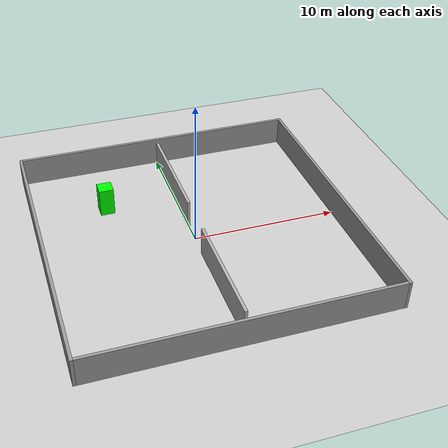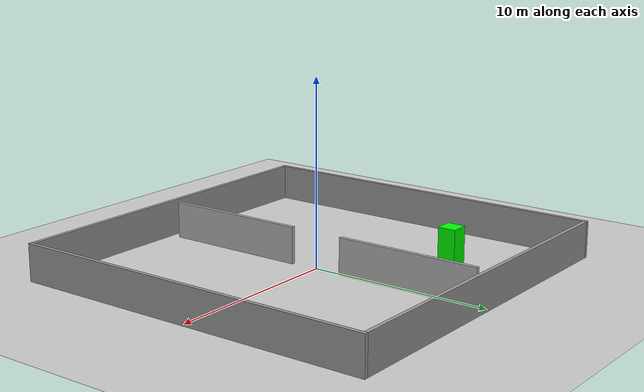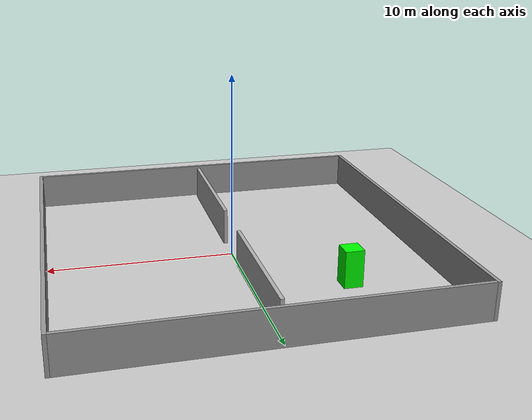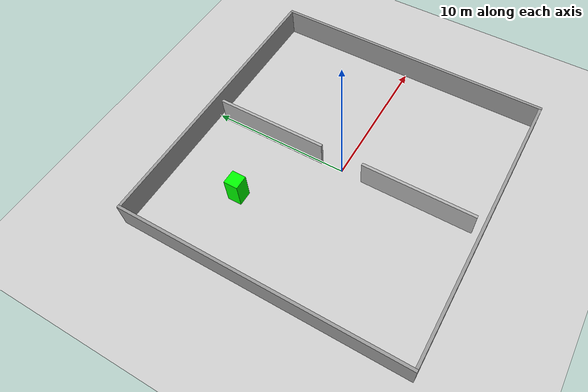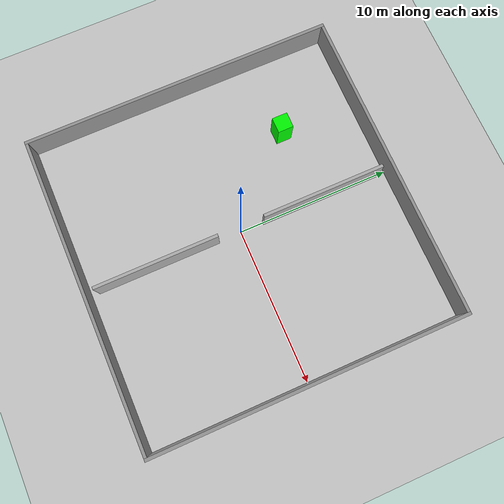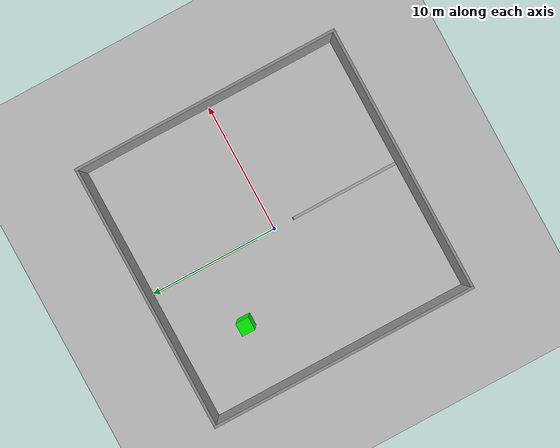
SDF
<?xml version="1.0"?>
<sdf version="1.6">
<world name="simple_narrow_channel">

  <!-- 基础环境 -->
  <include>
    <uri>model://ground_plane</uri>
  </include>
  <include>
    <uri>model://sun</uri>
  </include>

  <!-- 原有两面平行墙 -->
  <model name="wall_1" static="true">
    <pose>0 5.5 1 0 0 0</pose>
    <link name="link">
    <inertial>
        <mass>10000</mass> <!-- 设置极大质量（单位：kg） -->
        <inertia>
            <ixx>10000</ixx> <ixy>0</ixy> <ixz>0</ixz>
            <iyy>10000</iyy> <iyz>0</iyz>
            <izz>10000</izz>
        </inertia>
    </inertial>
      <collision name="collision">
        <geometry>
          <box>
            <size>0.2 8 2</size>
          </box>
        </geometry>
      </collision>
      <visual name="visual">
        <geometry>
          <box>
            <size>0.2 8 2</size>
          </box>
        </geometry>
        <material>
          <ambient>0.6 0.6 0.6 1</ambient>
          <diffuse>0.7 0.7 0.7 1</diffuse>
        </material>
      </visual>
    </link>
  </model>

  <model name="wall_2" static="true">
    <pose>0 -5.5 1 0 0 0</pose>
    <link name="link">
    <inertial>
        <mass>10000</mass> <!-- 设置极大质量（单位：kg） -->
        <inertia>
            <ixx>10000</ixx> <ixy>0</ixy> <ixz>0</ixz>
            <iyy>10000</iyy> <iyz>0</iyz>
            <izz>10000</izz>
        </inertia>
    </inertial>
      <collision name="collision">
        <geometry>
          <box>
            <size>0.2 8 2</size>
          </box>
        </geometry>
      </collision>
      <visual name="visual">
        <geometry>
          <box>
            <size>0.2 8 2</size>
          </box>
        </geometry>
        <material>
          <ambient>0.6 0.6 0.6 1</ambient>
          <diffuse>0.7 0.7 0.7 1</diffuse>
        </material>
      </visual>
    </link>
  </model>

  <!-- 新增外围墙壁 (20m×20m边界) -->
  <!-- 北墙 -->
  <model name="north_wall" static="true">
    <pose>0 10.1 1 0 0 0</pose>
    <link name="link">
    <inertial>
        <mass>10000</mass> <!-- 设置极大质量（单位：kg） -->
        <inertia>
            <ixx>10000</ixx> <ixy>0</ixy> <ixz>0</ixz>
            <iyy>10000</iyy> <iyz>0</iyz>
            <izz>10000</izz>
        </inertia>
    </inertial>
      <collision name="collision">
        <geometry>
          <box>
            <size>20 0.2 2</size> <!-- 宽度20m，厚度0.2m，高度1m -->
          </box>
        </geometry>
      </collision>
      <visual name="visual">
        <geometry>
          <box>
            <size>20 0.2 2</size>
          </box>
        </geometry>
        <material>
          <ambient>0.5 0.5 0.5 1</ambient> <!-- 稍深灰色 -->
          <diffuse>0.6 0.6 0.6 1</diffuse>
        </material>
      </visual>
    </link>
  </model>

  <!-- 南墙 -->
  <model name="south_wall" static="true">
    <pose>0 -10.1 1 0 0 0</pose>
    <link name="link">
    <inertial>
        <mass>10000</mass> <!-- 设置极大质量（单位：kg） -->
        <inertia>
            <ixx>10000</ixx> <ixy>0</ixy> <ixz>0</ixz>
            <iyy>10000</iyy> <iyz>0</iyz>
            <izz>10000</izz>
        </inertia>
    </inertial>
      <collision name="collision">
        <geometry>
          <box>
            <size>20 0.2 2</size>
          </box>
        </geometry>
      </collision>
      <visual name="visual">
        <geometry>
          <box>
            <size>20 0.2 2</size>
          </box>
        </geometry>
        <material>
          <ambient>0.5 0.5 0.5 1</ambient>
          <diffuse>0.6 0.6 0.6 1</diffuse>
        </material>
      </visual>
    </link>
  </model>

  <!-- 东墙 -->
  <model name="east_wall" static="true">
    <pose>10.1 0 1 0 0 0</pose>
    <link name="link">
    <inertial>
        <mass>10000</mass> <!-- 设置极大质量（单位：kg） -->
        <inertia>
            <ixx>10000</ixx> <ixy>0</ixy> <ixz>0</ixz>
            <iyy>10000</iyy> <iyz>0</iyz>
            <izz>10000</izz>
        </inertia>
    </inertial>
      <collision name="collision">
        <geometry>
          <box>
            <size>0.2 20.4 2</size> <!-- 厚度0.2m，长度20m，高度1m -->
          </box>
        </geometry>
      </collision>
      <visual name="visual">
        <geometry>
          <box>
            <size>0.2 20.4 2</size>
          </box>
        </geometry>
        <material>
          <ambient>0.5 0.5 0.5 1</ambient>
          <diffuse>0.6 0.6 0.6 1</diffuse>
        </material>
      </visual>
    </link>
  </model>

  <!-- 西墙 -->
  <model name="west_wall" static="true">
    <pose>-10.1 0 1 0 0 0</pose>
    <link name="link">
    <inertial>
        <mass>10000</mass> <!-- 设置极大质量（单位：kg） -->
        <inertia>
            <ixx>10000</ixx> <ixy>0</ixy> <ixz>0</ixz>
            <iyy>10000</iyy> <iyz>0</iyz>
            <izz>10000</izz>
        </inertia>
    </inertial>
      <collision name="collision">
        <geometry>
          <box>
            <size>0.2 20.4 2</size>
          </box>
        </geometry>
      </collision>
      <visual name="visual">
        <geometry>
          <box>
            <size>0.2 20.4 2</size>
          </box>
        </geometry>
        <material>
          <ambient>0.5 0.5 0.5 1</ambient>
          <diffuse>0.6 0.6 0.6 1</diffuse>
        </material>
      </visual>
    </link>
  </model>

    <!-- 动态移动的绿色立方体 -->
    <model name="moving_box">
      <pose>-5 5 1 0 0 0</pose>
      <link name="link">
        <inertial>
          <mass>10000</mass> <!-- 改为适当质量 -->
          <inertia>
            <ixx>10000</ixx> <ixy>0</ixy> <ixz>0</ixz>
            <iyy>10000</iyy> <iyz>0</iyz>
            <izz>10000</izz>
          </inertia>
        </inertial>
        <collision name="collision">
          <geometry><box><size>1 1 2</size></box></geometry>
        </collision>
        <visual name="visual">
          <geometry><box><size>1 1 2</size></box></geometry>
          <material>
            <ambient>0 1 0 1</ambient> <!-- 绿色 -->
          </material>
        </visual>
        <collision name="wheel1">
    <pose>0.45 0.45 -0.3 0 0 0</pose>
    <geometry><cylinder><radius>0.1</radius><length>0.05</length></cylinder></geometry>
    <surface><friction><ode><mu>1000</mu></ode></friction></surface>
  </collision>
  <collision name="wheel2">
    <pose>-0.45 0.45 -0.3 0 0 0</pose>
    <geometry><cylinder><radius>0.1</radius><length>0.05</length></cylinder></geometry>
  </collision>
  <collision name="wheel3">
    <pose>0.45 -0.45 -0.3 0 0 0</pose>
    <geometry><cylinder><radius>0.1</radius><length>0.05</length></cylinder></geometry>
  </collision>
  <collision name="wheel4">
    <pose>-0.45 -0.45 -0.3 0 0 0</pose>
    <geometry><cylinder><radius>0.1</radius><length>0.05</length></cylinder></geometry>
  </collision>
  <gravity>0</gravity>
      </link>
      <!-- 通过插件实现移动 -->
      <plugin name="box_controller" filename="libgazebo_ros_planar_move.so">
        <commandTopic>cmd_vel</commandTopic>
        <odometryTopic>odom</odometryTopic>
        <odometryFrame>odom</odometryFrame>
        <robotBaseFrame>base_link</robotBaseFrame>
        <publishOdometry>true</publishOdometry>
      </plugin>
    </model>
</world>
    </sdf>
